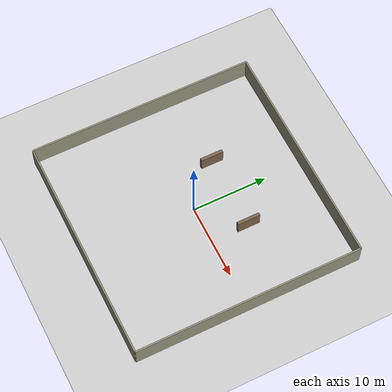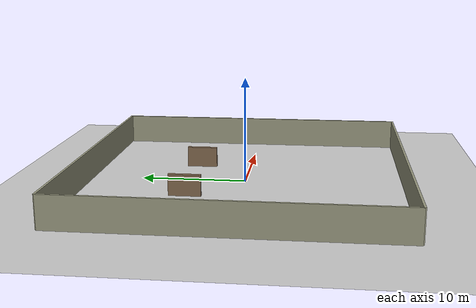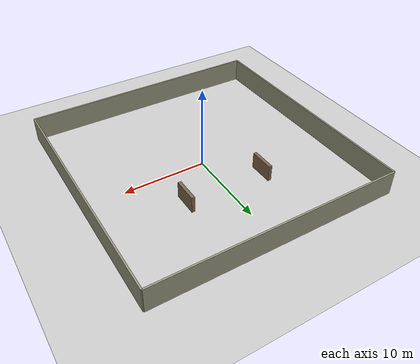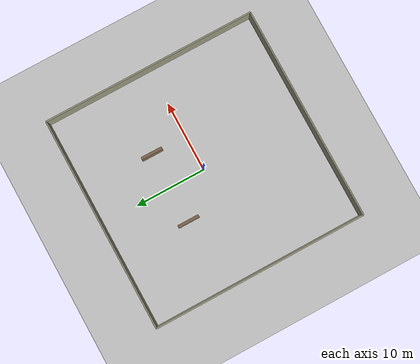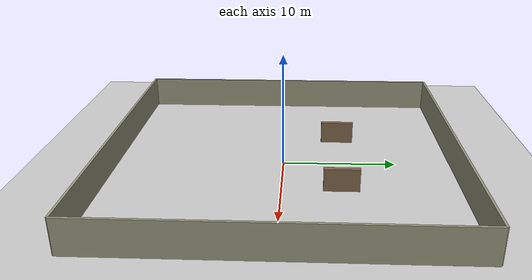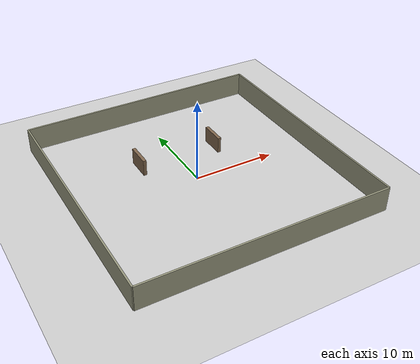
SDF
<sdf version="1.10">
 <world name="warehouse">
  <plugin filename="gz-sim-physics-system" name="gz::sim::systems::Physics">
   <engine type="ode"><max_step_size>0.001</max_step_size><real_time_factor>1.0</real_time_factor></engine>
  </plugin>
  <plugin filename="gz-sim-user-commands-system" name="gz::sim::systems::UserCommands"/>
  <plugin filename="gz-sim-scene-broadcaster-system" name="gz::sim::systems::SceneBroadcaster"/>
  <plugin filename="gz-sim-sensors-system" name="gz::sim::systems::Sensors">
   <render_engine>ogre2</render_engine>
  </plugin>
  <plugin filename="gz-sim-imu-system" name="gz::sim::systems::Imu"/>
  <plugin filename="gz-sim-contact-system" name="gz::sim::systems::Contact"/>
  <model name="ground_plane">
   <static>true</static>
   <link name="link">
    <collision name="collision">
     <geometry><plane><normal>0 0 1</normal><size>100 100</size></plane></geometry>
    </collision>
    <visual name="visual">
     <geometry><plane><normal>0 0 1</normal><size>100 100</size></plane></geometry>
     <material>
      <ambient>0.8 0.8 0.8 1</ambient>
      <diffuse>0.8 0.8 0.8 1</diffuse>
      <specular>0.8 0.8 0.8 1</specular>
     </material>
    </visual>
   </link>
  </model>
  <light type="directional" name="sun">
   <pose>0 0 10 0 0 0</pose>
   <diffuse>0.8 0.8 0.8 1</diffuse>
   <specular>0.8 0.8 0.8 1</specular>
   <direction>-0.5 0.5 -1</direction>
  </light>
  <scene><ambient>0.4 0.4 0.4 1</ambient><background>0.7 0.7 0.7 1</background></scene>
  <model name="north_wall">
   <static>true</static>
   <pose>0 15 1.5 0 0 0</pose>
   <link name="link">
    <collision name="collision"><geometry><box><size>30 0.2 3</size></box></geometry></collision>
    <visual name="visual">
     <geometry><box><size>30 0.2 3</size></box></geometry>
     <material><ambient>0.6 0.6 0.5 1</ambient><diffuse>0.6 0.6 0.5 1</diffuse></material>
    </visual>
   </link>
  </model>
  <model name="south_wall">
   <static>true</static>
   <pose>0 -15 1.5 0 0 0</pose>
   <link name="link">
    <collision name="collision"><geometry><box><size>30 0.2 3</size></box></geometry></collision>
    <visual name="visual">
     <geometry><box><size>30 0.2 3</size></box></geometry>
     <material><ambient>0.6 0.6 0.5 1</ambient><diffuse>0.6 0.6 0.5 1</diffuse></material>
    </visual>
   </link>
  </model>
  <model name="east_wall">
   <static>true</static>
   <pose>15 0 1.5 0 0 1.5708</pose>
   <link name="link">
    <collision name="collision"><geometry><box><size>30 0.2 3</size></box></geometry></collision>
    <visual name="visual">
     <geometry><box><size>30 0.2 3</size></box></geometry>
     <material><ambient>0.6 0.6 0.5 1</ambient><diffuse>0.6 0.6 0.5 1</diffuse></material>
    </visual>
   </link>
  </model>
  <model name="west_wall">
   <static>true</static>
   <pose>-15 0 1.5 0 0 1.5708</pose>
   <link name="link">
    <collision name="collision"><geometry><box><size>30 0.2 3</size></box></geometry></collision>
    <visual name="visual">
     <geometry><box><size>30 0.2 3</size></box></geometry>
     <material><ambient>0.6 0.6 0.5 1</ambient><diffuse>0.6 0.6 0.5 1</diffuse></material>
    </visual>
   </link>
  </model>
  <model name="shelf_1">
   <static>true</static>
   <pose>5 5 1.0 0 0 0</pose>
   <link name="link">
    <collision name="collision"><geometry><box><size>0.4 3.0 2.0</size></box></geometry></collision>
    <visual name="visual">
     <geometry><box><size>0.4 3.0 2.0</size></box></geometry>
     <material><ambient>0.5 0.4 0.3 1</ambient><diffuse>0.5 0.4 0.3 1</diffuse></material>
    </visual>
   </link>
  </model>
  <model name="shelf_2">
   <static>true</static>
   <pose>-5 5 1.0 0 0 0</pose>
   <link name="link">
    <collision name="collision"><geometry><box><size>0.4 3.0 2.0</size></box></geometry></collision>
    <visual name="visual">
     <geometry><box><size>0.4 3.0 2.0</size></box></geometry>
     <material><ambient>0.5 0.4 0.3 1</ambient><diffuse>0.5 0.4 0.3 1</diffuse></material>
    </visual>
   </link>
  </model>
 </world>
</sdf>
